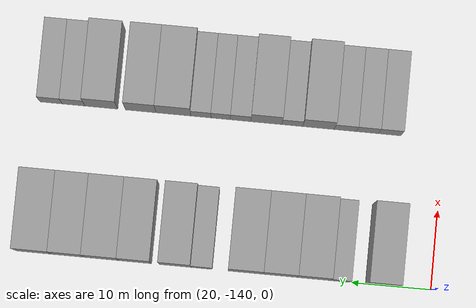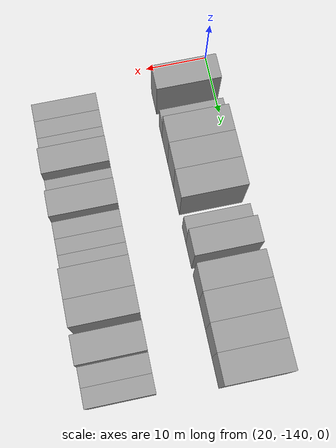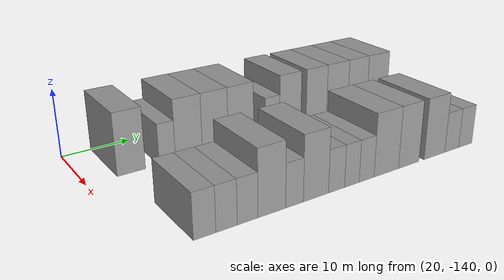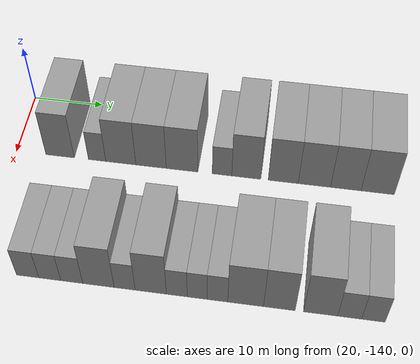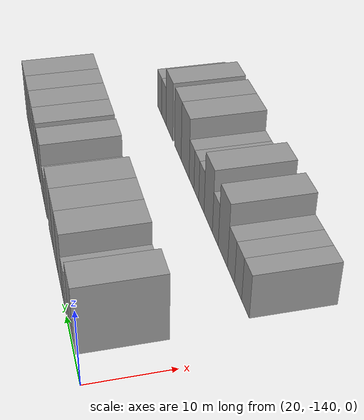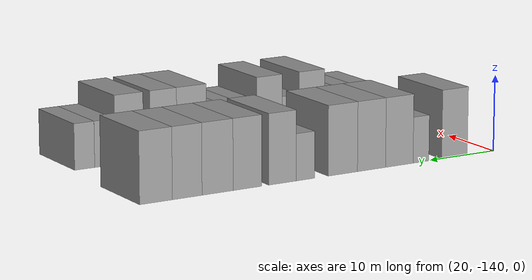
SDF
<sdf version="1.6">
 <world name="default">
  <model name="building_13">
   <static>1</static>
   <pose>25.0000 -133.7597 0 0.000000 0.000000 0.000000</pose>
   <link name="link">
    <pose>0 0 4.50 0 0 0</pose>
    <collision name="collision"><geometry><box><size>10.0000 4.0272 9.0000</size></box></geometry></collision>
    <visual name="visual">
     <cast_shadows>0</cast_shadows>
     <geometry><box><size>10.0000 4.0272 9.0000</size></box></geometry>
     <material>
      <script>
       <uri>model://grey_wall/materials/scripts</uri>
       <uri>model://grey_wall/materials/textures</uri>
       <name>vrc/grey_wall</name>
      </script>
     </material>
    </visual>
   </link>
  </model>
  <model name="building_14">
   <static>1</static>
   <pose>25.0000 -128.5231 0 0.000000 0.000000 0.000000</pose>
   <link name="link">
    <pose>0 0 3.00 0 0 0</pose>
    <collision name="collision"><geometry><box><size>10.0000 2.4459 6.0000</size></box></geometry></collision>
    <visual name="visual">
     <cast_shadows>0</cast_shadows>
     <geometry><box><size>10.0000 2.4459 6.0000</size></box></geometry>
     <material>
      <script>
       <uri>model://grey_wall/materials/scripts</uri>
       <uri>model://grey_wall/materials/textures</uri>
       <name>vrc/grey_wall</name>
      </script>
     </material>
    </visual>
   </link>
  </model>
  <model name="building_15">
   <static>1</static>
   <pose>25.0000 -125.1942 0 0.000000 0.000000 0.000000</pose>
   <link name="link">
    <pose>0 0 4.50 0 0 0</pose>
    <collision name="collision"><geometry><box><size>10.0000 4.2118 9.0000</size></box></geometry></collision>
    <visual name="visual">
     <cast_shadows>0</cast_shadows>
     <geometry><box><size>10.0000 4.2118 9.0000</size></box></geometry>
     <material>
      <script>
       <uri>model://grey_wall/materials/scripts</uri>
       <uri>model://grey_wall/materials/textures</uri>
       <name>vrc/grey_wall</name>
      </script>
     </material>
    </visual>
   </link>
  </model>
  <model name="building_16">
   <static>1</static>
   <pose>25.0000 -120.9669 0 0.000000 0.000000 0.000000</pose>
   <link name="link">
    <pose>0 0 4.50 0 0 0</pose>
    <collision name="collision"><geometry><box><size>10.0000 4.2428 9.0000</size></box></geometry></collision>
    <visual name="visual">
     <cast_shadows>0</cast_shadows>
     <geometry><box><size>10.0000 4.2428 9.0000</size></box></geometry>
     <material>
      <script>
       <uri>model://grey_wall/materials/scripts</uri>
       <uri>model://grey_wall/materials/textures</uri>
       <name>vrc/grey_wall</name>
      </script>
     </material>
    </visual>
   </link>
  </model>
  <model name="building_17">
   <static>1</static>
   <pose>25.0000 -116.6630 0 0.000000 0.000000 0.000000</pose>
   <link name="link">
    <pose>0 0 4.50 0 0 0</pose>
    <collision name="collision"><geometry><box><size>10.0000 4.3650 9.0000</size></box></geometry></collision>
    <visual name="visual">
     <cast_shadows>0</cast_shadows>
     <geometry><box><size>10.0000 4.3650 9.0000</size></box></geometry>
     <material>
      <script>
       <uri>model://grey_wall/materials/scripts</uri>
       <uri>model://grey_wall/materials/textures</uri>
       <name>vrc/grey_wall</name>
      </script>
     </material>
    </visual>
   </link>
  </model>
  <model name="building_18">
   <static>1</static>
   <pose>25.0000 -111.1464 0 0.000000 0.000000 0.000000</pose>
   <link name="link">
    <pose>0 0 3.00 0 0 0</pose>
    <collision name="collision"><geometry><box><size>10.0000 2.6683 6.0000</size></box></geometry></collision>
    <visual name="visual">
     <cast_shadows>0</cast_shadows>
     <geometry><box><size>10.0000 2.6683 6.0000</size></box></geometry>
     <material>
      <script>
       <uri>model://grey_wall/materials/scripts</uri>
       <uri>model://grey_wall/materials/textures</uri>
       <name>vrc/grey_wall</name>
      </script>
     </material>
    </visual>
   </link>
  </model>
  <model name="building_19">
   <static>1</static>
   <pose>25.0000 -107.8260 0 0.000000 0.000000 0.000000</pose>
   <link name="link">
    <pose>0 0 4.50 0 0 0</pose>
    <collision name="collision"><geometry><box><size>10.0000 3.9724 9.0000</size></box></geometry></collision>
    <visual name="visual">
     <cast_shadows>0</cast_shadows>
     <geometry><box><size>10.0000 3.9724 9.0000</size></box></geometry>
     <material>
      <script>
       <uri>model://grey_wall/materials/scripts</uri>
       <uri>model://grey_wall/materials/textures</uri>
       <name>vrc/grey_wall</name>
      </script>
     </material>
    </visual>
   </link>
  </model>
  <model name="building_20">
   <static>1</static>
   <pose>25.0000 -102.8106 0 0.000000 0.000000 0.000000</pose>
   <link name="link">
    <pose>0 0 4.50 0 0 0</pose>
    <collision name="collision"><geometry><box><size>10.0000 4.0584 9.0000</size></box></geometry></collision>
    <visual name="visual">
     <cast_shadows>0</cast_shadows>
     <geometry><box><size>10.0000 4.0584 9.0000</size></box></geometry>
     <material>
      <script>
       <uri>model://grey_wall/materials/scripts</uri>
       <uri>model://grey_wall/materials/textures</uri>
       <name>vrc/grey_wall</name>
      </script>
     </material>
    </visual>
   </link>
  </model>
  <model name="building_21">
   <static>1</static>
   <pose>25.0000 -98.6065 0 0.000000 0.000000 0.000000</pose>
   <link name="link">
    <pose>0 0 4.50 0 0 0</pose>
    <collision name="collision"><geometry><box><size>10.0000 4.3498 9.0000</size></box></geometry></collision>
    <visual name="visual">
     <cast_shadows>0</cast_shadows>
     <geometry><box><size>10.0000 4.3498 9.0000</size></box></geometry>
     <material>
      <script>
       <uri>model://grey_wall/materials/scripts</uri>
       <uri>model://grey_wall/materials/textures</uri>
       <name>vrc/grey_wall</name>
      </script>
     </material>
    </visual>
   </link>
  </model>
  <model name="building_22">
   <static>1</static>
   <pose>25.0000 -94.3852 0 0.000000 0.000000 0.000000</pose>
   <link name="link">
    <pose>0 0 4.50 0 0 0</pose>
    <collision name="collision"><geometry><box><size>10.0000 4.0928 9.0000</size></box></geometry></collision>
    <visual name="visual">
     <cast_shadows>0</cast_shadows>
     <geometry><box><size>10.0000 4.0928 9.0000</size></box></geometry>
     <material>
      <script>
       <uri>model://grey_wall/materials/scripts</uri>
       <uri>model://grey_wall/materials/textures</uri>
       <name>vrc/grey_wall</name>
      </script>
     </material>
    </visual>
   </link>
  </model>
  <model name="building_23">
   <static>1</static>
   <pose>25.0000 -90.1121 0 0.000000 0.000000 0.000000</pose>
   <link name="link">
    <pose>0 0 4.50 0 0 0</pose>
    <collision name="collision"><geometry><box><size>10.0000 4.4532 9.0000</size></box></geometry></collision>
    <visual name="visual">
     <cast_shadows>0</cast_shadows>
     <geometry><box><size>10.0000 4.4532 9.0000</size></box></geometry>
     <material>
      <script>
       <uri>model://grey_wall/materials/scripts</uri>
       <uri>model://grey_wall/materials/textures</uri>
       <name>vrc/grey_wall</name>
      </script>
     </material>
    </visual>
   </link>
  </model>
  <model name="building_114">
   <static>1</static>
   <pose>44.0000 -133.1254 0 0.000000 0.000000 0.000000</pose>
   <link name="link">
    <pose>0 0 3.00 0 0 0</pose>
    <collision name="collision"><geometry><box><size>10.0000 2.8598 6.0000</size></box></geometry></collision>
    <visual name="visual">
     <cast_shadows>0</cast_shadows>
     <geometry><box><size>10.0000 2.8598 6.0000</size></box></geometry>
     <material>
      <script>
       <uri>model://grey_wall/materials/scripts</uri>
       <uri>model://grey_wall/materials/textures</uri>
       <name>vrc/grey_wall</name>
      </script>
     </material>
    </visual>
   </link>
  </model>
  <model name="building_115">
   <static>1</static>
   <pose>44.0000 -130.2917 0 0.000000 0.000000 0.000000</pose>
   <link name="link">
    <pose>0 0 3.00 0 0 0</pose>
    <collision name="collision"><geometry><box><size>10.0000 2.8074 6.0000</size></box></geometry></collision>
    <visual name="visual">
     <cast_shadows>0</cast_shadows>
     <geometry><box><size>10.0000 2.8074 6.0000</size></box></geometry>
     <material>
      <script>
       <uri>model://grey_wall/materials/scripts</uri>
       <uri>model://grey_wall/materials/textures</uri>
       <name>vrc/grey_wall</name>
      </script>
     </material>
    </visual>
   </link>
  </model>
  <model name="building_116">
   <static>1</static>
   <pose>44.0000 -127.4849 0 0.000000 0.000000 0.000000</pose>
   <link name="link">
    <pose>0 0 3.00 0 0 0</pose>
    <collision name="collision"><geometry><box><size>10.0000 2.8063 6.0000</size></box></geometry></collision>
    <visual name="visual">
     <cast_shadows>0</cast_shadows>
     <geometry><box><size>10.0000 2.8063 6.0000</size></box></geometry>
     <material>
      <script>
       <uri>model://grey_wall/materials/scripts</uri>
       <uri>model://grey_wall/materials/textures</uri>
       <name>vrc/grey_wall</name>
      </script>
     </material>
    </visual>
   </link>
  </model>
  <model name="building_117">
   <static>1</static>
   <pose>44.0000 -124.0967 0 0.000000 0.000000 0.000000</pose>
   <link name="link">
    <pose>0 0 4.50 0 0 0</pose>
    <collision name="collision"><geometry><box><size>10.0000 3.9700 9.0000</size></box></geometry></collision>
    <visual name="visual">
     <cast_shadows>0</cast_shadows>
     <geometry><box><size>10.0000 3.9700 9.0000</size></box></geometry>
     <material>
      <script>
       <uri>model://grey_wall/materials/scripts</uri>
       <uri>model://grey_wall/materials/textures</uri>
       <name>vrc/grey_wall</name>
      </script>
     </material>
    </visual>
   </link>
  </model>
  <model name="building_118">
   <static>1</static>
   <pose>44.0000 -120.7946 0 0.000000 0.000000 0.000000</pose>
   <link name="link">
    <pose>0 0 3.00 0 0 0</pose>
    <collision name="collision"><geometry><box><size>10.0000 2.6342 6.0000</size></box></geometry></collision>
    <visual name="visual">
     <cast_shadows>0</cast_shadows>
     <geometry><box><size>10.0000 2.6342 6.0000</size></box></geometry>
     <material>
      <script>
       <uri>model://grey_wall/materials/scripts</uri>
       <uri>model://grey_wall/materials/textures</uri>
       <name>vrc/grey_wall</name>
      </script>
     </material>
    </visual>
   </link>
  </model>
  <model name="building_119">
   <static>1</static>
   <pose>44.0000 -117.5185 0 0.000000 0.000000 0.000000</pose>
   <link name="link">
    <pose>0 0 4.50 0 0 0</pose>
    <collision name="collision"><geometry><box><size>10.0000 3.9182 9.0000</size></box></geometry></collision>
    <visual name="visual">
     <cast_shadows>0</cast_shadows>
     <geometry><box><size>10.0000 3.9182 9.0000</size></box></geometry>
     <material>
      <script>
       <uri>model://grey_wall/materials/scripts</uri>
       <uri>model://grey_wall/materials/textures</uri>
       <name>vrc/grey_wall</name>
      </script>
     </material>
    </visual>
   </link>
  </model>
  <model name="building_120">
   <static>1</static>
   <pose>44.0000 -114.2616 0 0.000000 0.000000 0.000000</pose>
   <link name="link">
    <pose>0 0 3.00 0 0 0</pose>
    <collision name="collision"><geometry><box><size>10.0000 2.5955 6.0000</size></box></geometry></collision>
    <visual name="visual">
     <cast_shadows>0</cast_shadows>
     <geometry><box><size>10.0000 2.5955 6.0000</size></box></geometry>
     <material>
      <script>
       <uri>model://grey_wall/materials/scripts</uri>
       <uri>model://grey_wall/materials/textures</uri>
       <name>vrc/grey_wall</name>
      </script>
     </material>
    </visual>
   </link>
  </model>
  <model name="building_121">
   <static>1</static>
   <pose>44.0000 -111.7365 0 0.000000 0.000000 0.000000</pose>
   <link name="link">
    <pose>0 0 3.00 0 0 0</pose>
    <collision name="collision"><geometry><box><size>10.0000 2.4547 6.0000</size></box></geometry></collision>
    <visual name="visual">
     <cast_shadows>0</cast_shadows>
     <geometry><box><size>10.0000 2.4547 6.0000</size></box></geometry>
     <material>
      <script>
       <uri>model://grey_wall/materials/scripts</uri>
       <uri>model://grey_wall/materials/textures</uri>
       <name>vrc/grey_wall</name>
      </script>
     </material>
    </visual>
   </link>
  </model>
  <model name="building_122">
   <static>1</static>
   <pose>44.0000 -109.2348 0 0.000000 0.000000 0.000000</pose>
   <link name="link">
    <pose>0 0 3.00 0 0 0</pose>
    <collision name="collision"><geometry><box><size>10.0000 2.5488 6.0000</size></box></geometry></collision>
    <visual name="visual">
     <cast_shadows>0</cast_shadows>
     <geometry><box><size>10.0000 2.5488 6.0000</size></box></geometry>
     <material>
      <script>
       <uri>model://grey_wall/materials/scripts</uri>
       <uri>model://grey_wall/materials/textures</uri>
       <name>vrc/grey_wall</name>
      </script>
     </material>
    </visual>
   </link>
  </model>
  <model name="building_123">
   <static>1</static>
   <pose>44.0000 -105.7616 0 0.000000 0.000000 0.000000</pose>
   <link name="link">
    <pose>0 0 4.50 0 0 0</pose>
    <collision name="collision"><geometry><box><size>10.0000 4.3976 9.0000</size></box></geometry></collision>
    <visual name="visual">
     <cast_shadows>0</cast_shadows>
     <geometry><box><size>10.0000 4.3976 9.0000</size></box></geometry>
     <material>
      <script>
       <uri>model://grey_wall/materials/scripts</uri>
       <uri>model://grey_wall/materials/textures</uri>
       <name>vrc/grey_wall</name>
      </script>
     </material>
    </visual>
   </link>
  </model>
  <model name="building_124">
   <static>1</static>
   <pose>44.0000 -101.6304 0 0.000000 0.000000 0.000000</pose>
   <link name="link">
    <pose>0 0 4.50 0 0 0</pose>
    <collision name="collision"><geometry><box><size>10.0000 3.8648 9.0000</size></box></geometry></collision>
    <visual name="visual">
     <cast_shadows>0</cast_shadows>
     <geometry><box><size>10.0000 3.8648 9.0000</size></box></geometry>
     <material>
      <script>
       <uri>model://grey_wall/materials/scripts</uri>
       <uri>model://grey_wall/materials/textures</uri>
       <name>vrc/grey_wall</name>
      </script>
     </material>
    </visual>
   </link>
  </model>
  <model name="building_125">
   <static>1</static>
   <pose>44.0000 -96.6340 0 0.000000 0.000000 0.000000</pose>
   <link name="link">
    <pose>0 0 4.50 0 0 0</pose>
    <collision name="collision"><geometry><box><size>10.0000 4.1279 9.0000</size></box></geometry></collision>
    <visual name="visual">
     <cast_shadows>0</cast_shadows>
     <geometry><box><size>10.0000 4.1279 9.0000</size></box></geometry>
     <material>
      <script>
       <uri>model://grey_wall/materials/scripts</uri>
       <uri>model://grey_wall/materials/textures</uri>
       <name>vrc/grey_wall</name>
      </script>
     </material>
    </visual>
   </link>
  </model>
  <model name="building_126">
   <static>1</static>
   <pose>44.0000 -93.1272 0 0.000000 0.000000 0.000000</pose>
   <link name="link">
    <pose>0 0 3.00 0 0 0</pose>
    <collision name="collision"><geometry><box><size>10.0000 2.8858 6.0000</size></box></geometry></collision>
    <visual name="visual">
     <cast_shadows>0</cast_shadows>
     <geometry><box><size>10.0000 2.8858 6.0000</size></box></geometry>
     <material>
      <script>
       <uri>model://grey_wall/materials/scripts</uri>
       <uri>model://grey_wall/materials/textures</uri>
       <name>vrc/grey_wall</name>
      </script>
     </material>
    </visual>
   </link>
  </model>
  <model name="building_127">
   <static>1</static>
   <pose>44.0000 -90.2723 0 0.000000 0.000000 0.000000</pose>
   <link name="link">
    <pose>0 0 3.00 0 0 0</pose>
    <collision name="collision"><geometry><box><size>10.0000 2.8239 6.0000</size></box></geometry></collision>
    <visual name="visual">
     <cast_shadows>0</cast_shadows>
     <geometry><box><size>10.0000 2.8239 6.0000</size></box></geometry>
     <material>
      <script>
       <uri>model://grey_wall/materials/scripts</uri>
       <uri>model://grey_wall/materials/textures</uri>
       <name>vrc/grey_wall</name>
      </script>
     </material>
    </visual>
   </link>
  </model>
 </world>
</sdf>
